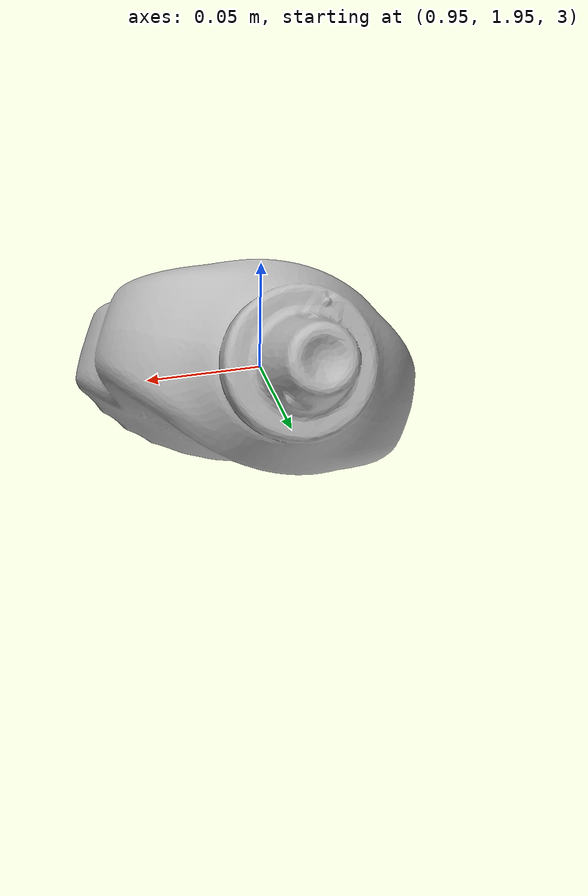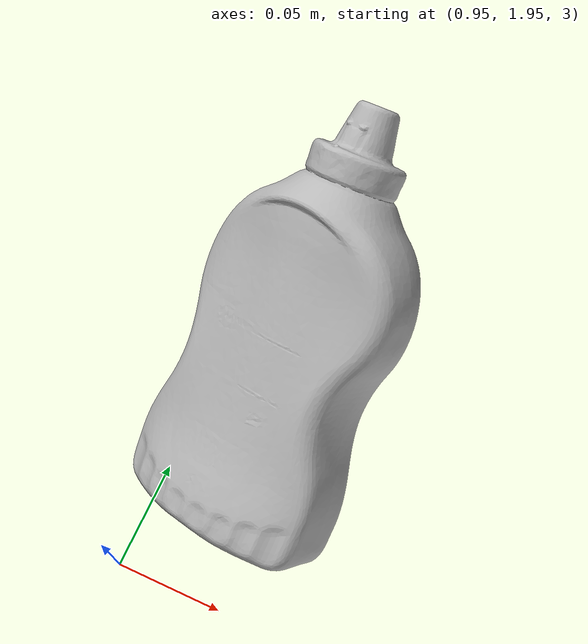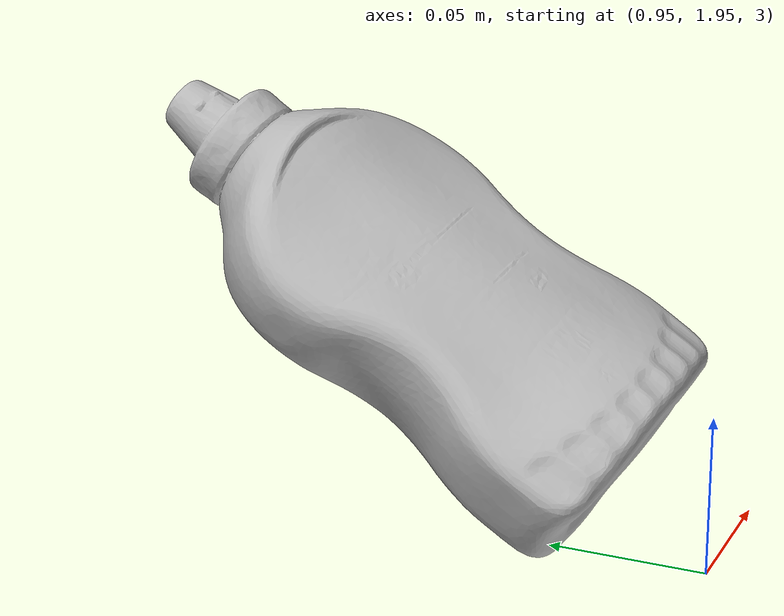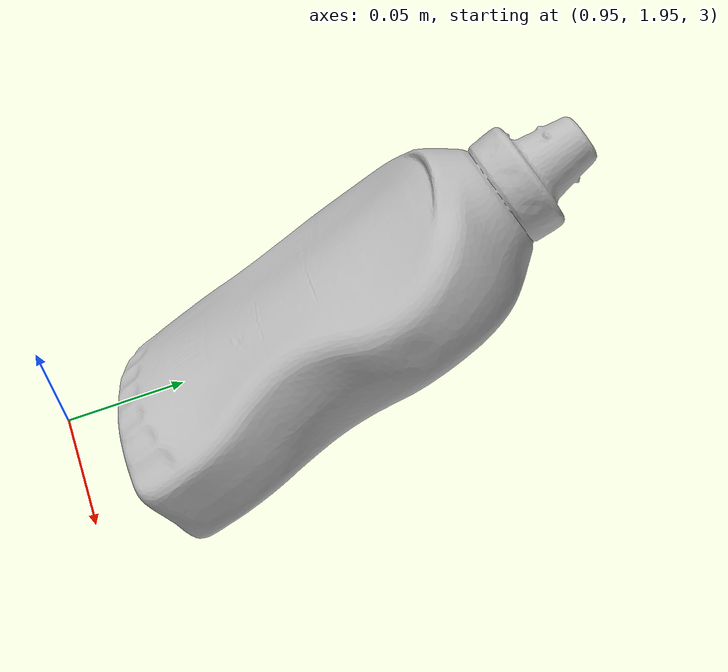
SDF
<?xml version="1.0" ?>
<sdf version="1.7">
<!--
This SDF file was automatically generated using a template modified
and authored by Adwait Naik. The moment of interia is not supposed to be changed.
-->
    <model name="mustard_bottle">
      <pose>1.0 2.0 3.0 -1.0 0 0</pose>
      <link name="link">
        <inertial>
          <inertia>
           <ixx>1.6697164243557222e-06</ixx>
           <ixy>-7.608043365683558e-23</ixy>
           <ixz>-8.85497422500391e-24</ixz>
           <iyy>1.454996005383364e-06</iyy>
           <iyz>5.1836699346339805e-24</iyz>
           <izz>4.2928863786736384e-07</izz>
          </inertia>
          <mass>0.6120391571167176</mass>
        </inertial>
        <collision name="collision">
          <geometry>
          	<mesh>
             <uri>textured.dae</uri>
            </mesh>
          </geometry>
          <surface>
            <friction>
                <bullet>
                 <friction>0.3</friction>
                  <friction2>0.3</friction2>
                  <rolling_friction>0.02</rolling_friction>
                </bullet>
            </friction>
            <contact>
              <bullet>
                <soft_cfm>0.00001</soft_cfm>
                <soft_erp>0.05</soft_erp>
                <kp>1e3</kp>
                <kd>50</kd>
              </bullet>
            </contact>
          </surface>
        </collision>

        <visual name="visual">
          <geometry>
          	<mesh>
            <uri>textured.dae</uri>
	        </mesh>
          </geometry>
        </visual>
      </link>
    </model>
</sdf>
